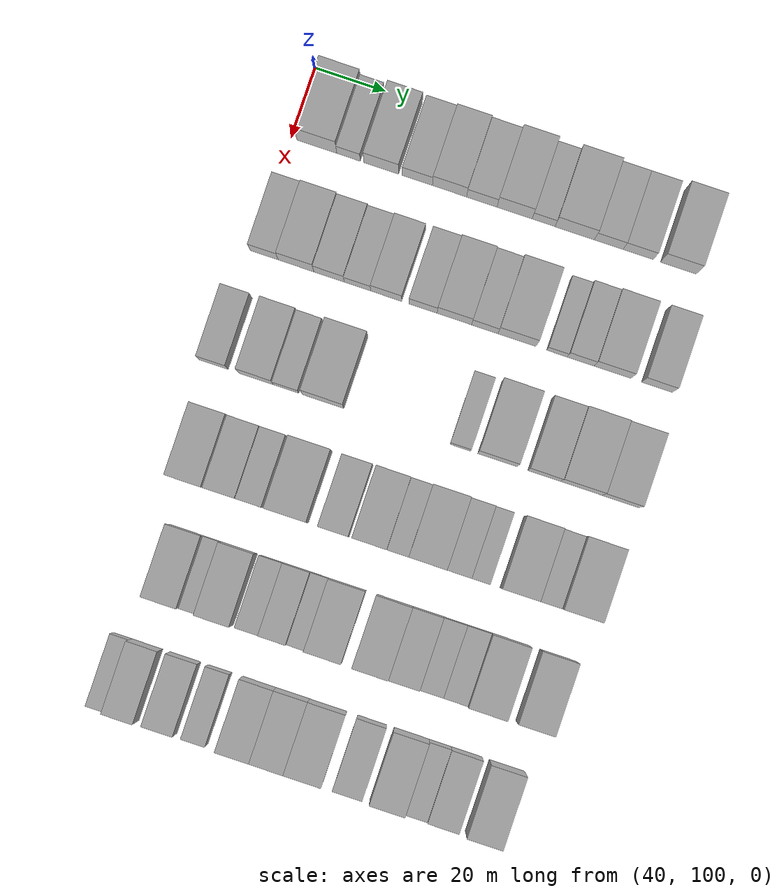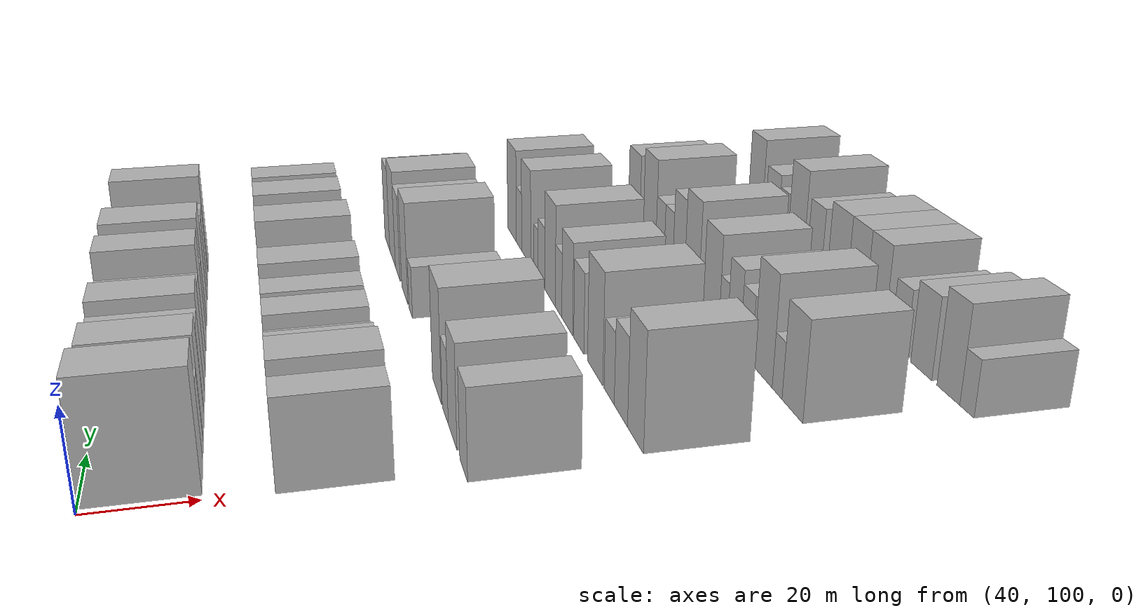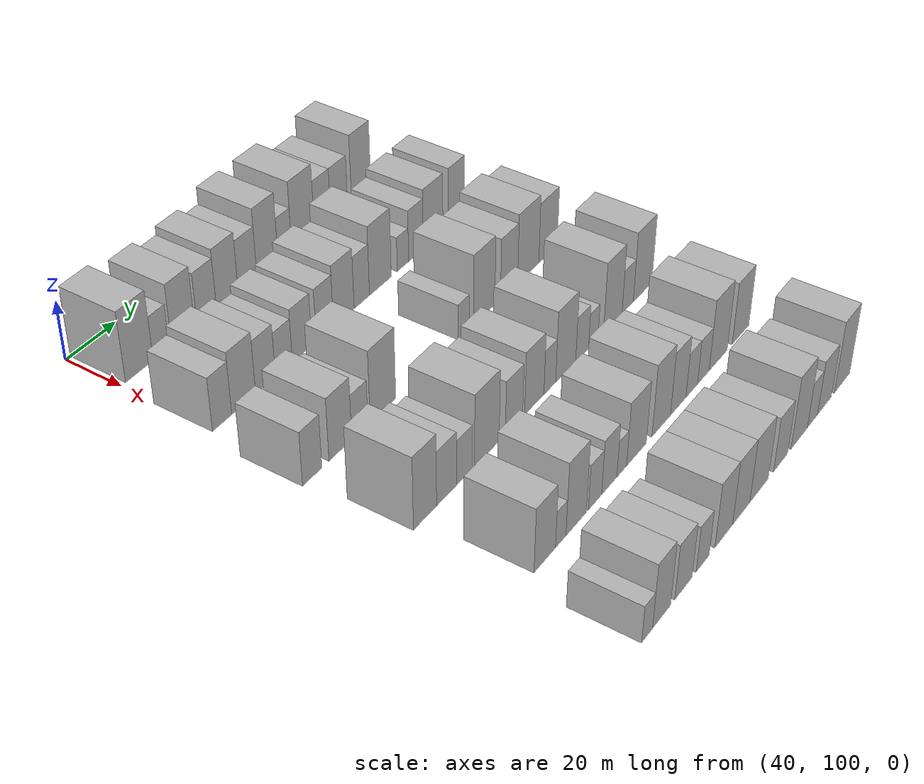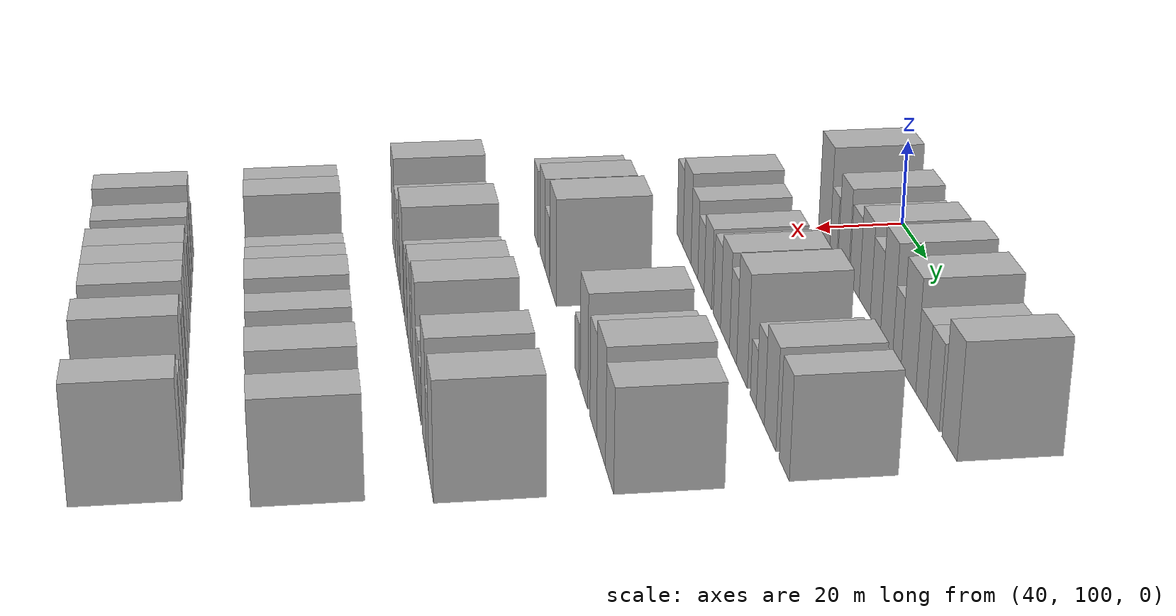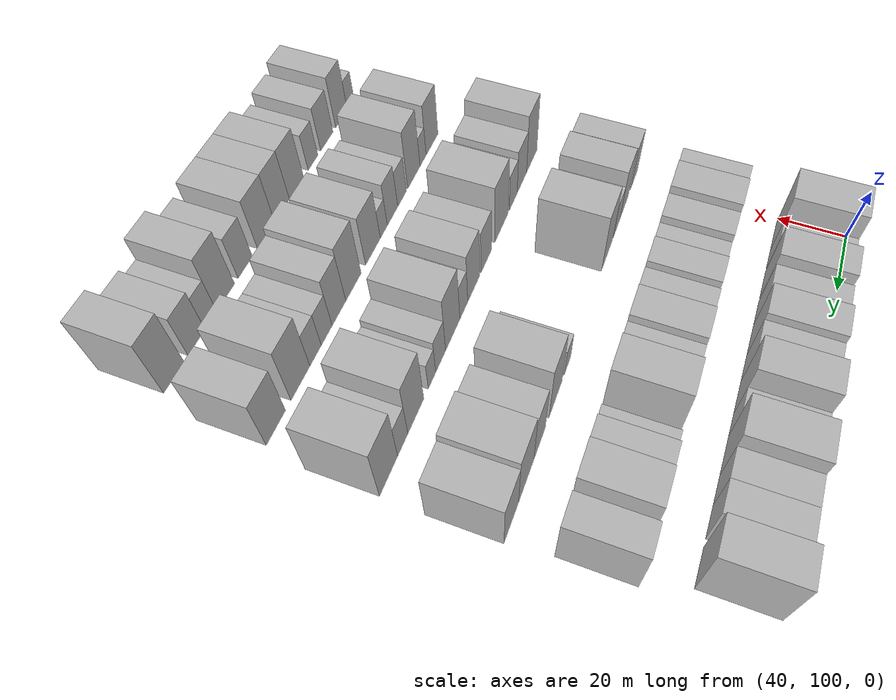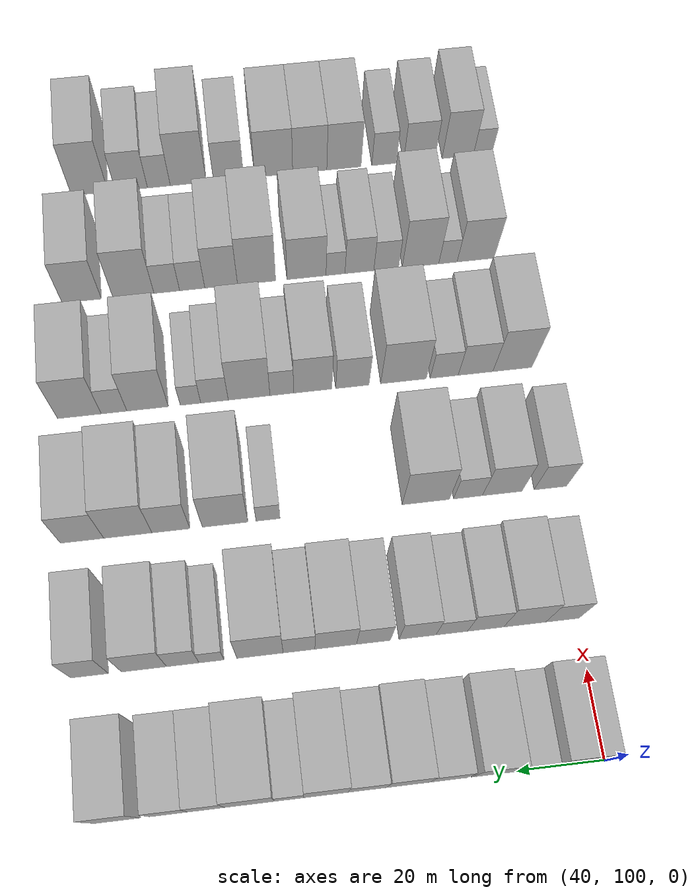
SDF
<sdf version="1.6">
 <world name="default">
  <model name="building_68">
   <static>1</static>
   <pose>50.0000 107.2907 0 0.000000 0.000000 0.000000</pose>
   <link name="link">
    <pose>0 0 12.00 0 0 0</pose>
    <collision name="collision"><geometry><box><size>20.0000 11.2395 24.0000</size></box></geometry></collision>
    <visual name="visual">
     <cast_shadows>0</cast_shadows>
     <geometry><box><size>20.0000 11.2395 24.0000</size></box></geometry>
     <material>
      <script>
       <uri>model://HANNAS_wall/materials/scripts</uri>
       <uri>model://HANNAS_wall/materials/textures</uri>
       <name>vrc/HANNAS_wall</name>
      </script>
     </material>
    </visual>
   </link>
  </model>
  <model name="building_69">
   <static>1</static>
   <pose>50.0000 116.2270 0 0.000000 0.000000 0.000000</pose>
   <link name="link">
    <pose>0 0 7.50 0 0 0</pose>
    <collision name="collision"><geometry><box><size>20.0000 6.6330 15.0000</size></box></geometry></collision>
    <visual name="visual">
     <cast_shadows>0</cast_shadows>
     <geometry><box><size>20.0000 6.6330 15.0000</size></box></geometry>
     <material>
      <script>
       <uri>model://HANNAS_wall/materials/scripts</uri>
       <uri>model://HANNAS_wall/materials/textures</uri>
       <name>vrc/HANNAS_wall</name>
      </script>
     </material>
    </visual>
   </link>
  </model>
  <model name="building_70">
   <static>1</static>
   <pose>50.0000 125.4357 0 0.000000 0.000000 0.000000</pose>
   <link name="link">
    <pose>0 0 10.50 0 0 0</pose>
    <collision name="collision"><geometry><box><size>20.0000 9.7845 21.0000</size></box></geometry></collision>
    <visual name="visual">
     <cast_shadows>0</cast_shadows>
     <geometry><box><size>20.0000 9.7845 21.0000</size></box></geometry>
     <material>
      <script>
       <uri>model://HANNAS_wall/materials/scripts</uri>
       <uri>model://HANNAS_wall/materials/textures</uri>
       <name>vrc/HANNAS_wall</name>
      </script>
     </material>
    </visual>
   </link>
  </model>
  <model name="building_71">
   <static>1</static>
   <pose>50.0000 135.5813 0 0.000000 0.000000 0.000000</pose>
   <link name="link">
    <pose>0 0 9.00 0 0 0</pose>
    <collision name="collision"><geometry><box><size>20.0000 8.5066 18.0000</size></box></geometry></collision>
    <visual name="visual">
     <cast_shadows>0</cast_shadows>
     <geometry><box><size>20.0000 8.5066 18.0000</size></box></geometry>
     <material>
      <script>
       <uri>model://HANNAS_wall/materials/scripts</uri>
       <uri>model://HANNAS_wall/materials/textures</uri>
       <name>vrc/HANNAS_wall</name>
      </script>
     </material>
    </visual>
   </link>
  </model>
  <model name="building_72">
   <static>1</static>
   <pose>50.0000 144.6615 0 0.000000 0.000000 0.000000</pose>
   <link name="link">
    <pose>0 0 10.50 0 0 0</pose>
    <collision name="collision"><geometry><box><size>20.0000 9.6538 21.0000</size></box></geometry></collision>
    <visual name="visual">
     <cast_shadows>0</cast_shadows>
     <geometry><box><size>20.0000 9.6538 21.0000</size></box></geometry>
     <material>
      <script>
       <uri>model://HANNAS_wall/materials/scripts</uri>
       <uri>model://HANNAS_wall/materials/textures</uri>
       <name>vrc/HANNAS_wall</name>
      </script>
     </material>
    </visual>
   </link>
  </model>
  <model name="building_73">
   <static>1</static>
   <pose>50.0000 153.7642 0 0.000000 0.000000 0.000000</pose>
   <link name="link">
    <pose>0 0 9.00 0 0 0</pose>
    <collision name="collision"><geometry><box><size>20.0000 8.5515 18.0000</size></box></geometry></collision>
    <visual name="visual">
     <cast_shadows>0</cast_shadows>
     <geometry><box><size>20.0000 8.5515 18.0000</size></box></geometry>
     <material>
      <script>
       <uri>model://HANNAS_wall/materials/scripts</uri>
       <uri>model://HANNAS_wall/materials/textures</uri>
       <name>vrc/HANNAS_wall</name>
      </script>
     </material>
    </visual>
   </link>
  </model>
  <model name="building_74">
   <static>1</static>
   <pose>50.0000 162.9716 0 0.000000 0.000000 0.000000</pose>
   <link name="link">
    <pose>0 0 12.00 0 0 0</pose>
    <collision name="collision"><geometry><box><size>20.0000 9.8633 24.0000</size></box></geometry></collision>
    <visual name="visual">
     <cast_shadows>0</cast_shadows>
     <geometry><box><size>20.0000 9.8633 24.0000</size></box></geometry>
     <material>
      <script>
       <uri>model://HANNAS_wall/materials/scripts</uri>
       <uri>model://HANNAS_wall/materials/textures</uri>
       <name>vrc/HANNAS_wall</name>
      </script>
     </material>
    </visual>
   </link>
  </model>
  <model name="building_75">
   <static>1</static>
   <pose>50.0000 171.1340 0 0.000000 0.000000 0.000000</pose>
   <link name="link">
    <pose>0 0 7.50 0 0 0</pose>
    <collision name="collision"><geometry><box><size>20.0000 6.4616 15.0000</size></box></geometry></collision>
    <visual name="visual">
     <cast_shadows>0</cast_shadows>
     <geometry><box><size>20.0000 6.4616 15.0000</size></box></geometry>
     <material>
      <script>
       <uri>model://HANNAS_wall/materials/scripts</uri>
       <uri>model://HANNAS_wall/materials/textures</uri>
       <name>vrc/HANNAS_wall</name>
      </script>
     </material>
    </visual>
   </link>
  </model>
  <model name="building_76">
   <static>1</static>
   <pose>50.0000 179.8879 0 0.000000 0.000000 0.000000</pose>
   <link name="link">
    <pose>0 0 12.00 0 0 0</pose>
    <collision name="collision"><geometry><box><size>20.0000 11.0463 24.0000</size></box></geometry></collision>
    <visual name="visual">
     <cast_shadows>0</cast_shadows>
     <geometry><box><size>20.0000 11.0463 24.0000</size></box></geometry>
     <material>
      <script>
       <uri>model://HANNAS_wall/materials/scripts</uri>
       <uri>model://HANNAS_wall/materials/textures</uri>
       <name>vrc/HANNAS_wall</name>
      </script>
     </material>
    </visual>
   </link>
  </model>
  <model name="building_77">
   <static>1</static>
   <pose>50.0000 189.4567 0 0.000000 0.000000 0.000000</pose>
   <link name="link">
    <pose>0 0 9.00 0 0 0</pose>
    <collision name="collision"><geometry><box><size>20.0000 8.0913 18.0000</size></box></geometry></collision>
    <visual name="visual">
     <cast_shadows>0</cast_shadows>
     <geometry><box><size>20.0000 8.0913 18.0000</size></box></geometry>
     <material>
      <script>
       <uri>model://HANNAS_wall/materials/scripts</uri>
       <uri>model://HANNAS_wall/materials/textures</uri>
       <name>vrc/HANNAS_wall</name>
      </script>
     </material>
    </visual>
   </link>
  </model>
  <model name="building_78">
   <static>1</static>
   <pose>50.0000 197.7735 0 0.000000 0.000000 0.000000</pose>
   <link name="link">
    <pose>0 0 9.00 0 0 0</pose>
    <collision name="collision"><geometry><box><size>20.0000 8.5423 18.0000</size></box></geometry></collision>
    <visual name="visual">
     <cast_shadows>0</cast_shadows>
     <geometry><box><size>20.0000 8.5423 18.0000</size></box></geometry>
     <material>
      <script>
       <uri>model://HANNAS_wall/materials/scripts</uri>
       <uri>model://HANNAS_wall/materials/textures</uri>
       <name>vrc/HANNAS_wall</name>
      </script>
     </material>
    </visual>
   </link>
  </model>
  <model name="building_79">
   <static>1</static>
   <pose>50.0000 209.0818 0 0.000000 0.000000 0.000000</pose>
   <link name="link">
    <pose>0 0 12.00 0 0 0</pose>
    <collision name="collision"><geometry><box><size>20.0000 10.0741 24.0000</size></box></geometry></collision>
    <visual name="visual">
     <cast_shadows>0</cast_shadows>
     <geometry><box><size>20.0000 10.0741 24.0000</size></box></geometry>
     <material>
      <script>
       <uri>model://HANNAS_wall/materials/scripts</uri>
       <uri>model://HANNAS_wall/materials/textures</uri>
       <name>vrc/HANNAS_wall</name>
      </script>
     </material>
    </visual>
   </link>
  </model>
  <model name="building_188">
   <static>1</static>
   <pose>82.0000 103.3178 0 0.000000 0.000000 0.000000</pose>
   <link name="link">
    <pose>0 0 9.00 0 0 0</pose>
    <collision name="collision"><geometry><box><size>20.0000 7.8950 18.0000</size></box></geometry></collision>
    <visual name="visual">
     <cast_shadows>0</cast_shadows>
     <geometry><box><size>20.0000 7.8950 18.0000</size></box></geometry>
     <material>
      <script>
       <uri>model://HANNAS_wall/materials/scripts</uri>
       <uri>model://HANNAS_wall/materials/textures</uri>
       <name>vrc/HANNAS_wall</name>
      </script>
     </material>
    </visual>
   </link>
  </model>
  <model name="building_189">
   <static>1</static>
   <pose>82.0000 112.2791 0 0.000000 0.000000 0.000000</pose>
   <link name="link">
    <pose>0 0 10.50 0 0 0</pose>
    <collision name="collision"><geometry><box><size>20.0000 10.0275 21.0000</size></box></geometry></collision>
    <visual name="visual">
     <cast_shadows>0</cast_shadows>
     <geometry><box><size>20.0000 10.0275 21.0000</size></box></geometry>
     <material>
      <script>
       <uri>model://HANNAS_wall/materials/scripts</uri>
       <uri>model://HANNAS_wall/materials/textures</uri>
       <name>vrc/HANNAS_wall</name>
      </script>
     </material>
    </visual>
   </link>
  </model>
  <model name="building_190">
   <static>1</static>
   <pose>82.0000 121.5537 0 0.000000 0.000000 0.000000</pose>
   <link name="link">
    <pose>0 0 9.00 0 0 0</pose>
    <collision name="collision"><geometry><box><size>20.0000 8.5217 18.0000</size></box></geometry></collision>
    <visual name="visual">
     <cast_shadows>0</cast_shadows>
     <geometry><box><size>20.0000 8.5217 18.0000</size></box></geometry>
     <material>
      <script>
       <uri>model://HANNAS_wall/materials/scripts</uri>
       <uri>model://HANNAS_wall/materials/textures</uri>
       <name>vrc/HANNAS_wall</name>
      </script>
     </material>
    </visual>
   </link>
  </model>
  <model name="building_191">
   <static>1</static>
   <pose>82.0000 129.5365 0 0.000000 0.000000 0.000000</pose>
   <link name="link">
    <pose>0 0 7.50 0 0 0</pose>
    <collision name="collision"><geometry><box><size>20.0000 7.4438 15.0000</size></box></geometry></collision>
    <visual name="visual">
     <cast_shadows>0</cast_shadows>
     <geometry><box><size>20.0000 7.4438 15.0000</size></box></geometry>
     <material>
      <script>
       <uri>model://HANNAS_wall/materials/scripts</uri>
       <uri>model://HANNAS_wall/materials/textures</uri>
       <name>vrc/HANNAS_wall</name>
      </script>
     </material>
    </visual>
   </link>
  </model>
  <model name="building_192">
   <static>1</static>
   <pose>82.0000 137.6174 0 0.000000 0.000000 0.000000</pose>
   <link name="link">
    <pose>0 0 9.00 0 0 0</pose>
    <collision name="collision"><geometry><box><size>20.0000 8.7180 18.0000</size></box></geometry></collision>
    <visual name="visual">
     <cast_shadows>0</cast_shadows>
     <geometry><box><size>20.0000 8.7180 18.0000</size></box></geometry>
     <material>
      <script>
       <uri>model://HANNAS_wall/materials/scripts</uri>
       <uri>model://HANNAS_wall/materials/textures</uri>
       <name>vrc/HANNAS_wall</name>
      </script>
     </material>
    </visual>
   </link>
  </model>
  <model name="building_193">
   <static>1</static>
   <pose>82.0000 147.9540 0 0.000000 0.000000 0.000000</pose>
   <link name="link">
    <pose>0 0 9.00 0 0 0</pose>
    <collision name="collision"><geometry><box><size>20.0000 7.9552 18.0000</size></box></geometry></collision>
    <visual name="visual">
     <cast_shadows>0</cast_shadows>
     <geometry><box><size>20.0000 7.9552 18.0000</size></box></geometry>
     <material>
      <script>
       <uri>model://HANNAS_wall/materials/scripts</uri>
       <uri>model://HANNAS_wall/materials/textures</uri>
       <name>vrc/HANNAS_wall</name>
      </script>
     </material>
    </visual>
   </link>
  </model>
  <model name="building_194">
   <static>1</static>
   <pose>82.0000 156.7895 0 0.000000 0.000000 0.000000</pose>
   <link name="link">
    <pose>0 0 10.50 0 0 0</pose>
    <collision name="collision"><geometry><box><size>20.0000 9.7158 21.0000</size></box></geometry></collision>
    <visual name="visual">
     <cast_shadows>0</cast_shadows>
     <geometry><box><size>20.0000 9.7158 21.0000</size></box></geometry>
     <material>
      <script>
       <uri>model://HANNAS_wall/materials/scripts</uri>
       <uri>model://HANNAS_wall/materials/textures</uri>
       <name>vrc/HANNAS_wall</name>
      </script>
     </material>
    </visual>
   </link>
  </model>
  <model name="building_195">
   <static>1</static>
   <pose>82.0000 165.3419 0 0.000000 0.000000 0.000000</pose>
   <link name="link">
    <pose>0 0 9.00 0 0 0</pose>
    <collision name="collision"><geometry><box><size>20.0000 7.3891 18.0000</size></box></geometry></collision>
    <visual name="visual">
     <cast_shadows>0</cast_shadows>
     <geometry><box><size>20.0000 7.3891 18.0000</size></box></geometry>
     <material>
      <script>
       <uri>model://HANNAS_wall/materials/scripts</uri>
       <uri>model://HANNAS_wall/materials/textures</uri>
       <name>vrc/HANNAS_wall</name>
      </script>
     </material>
    </visual>
   </link>
  </model>
  <model name="building_196">
   <static>1</static>
   <pose>82.0000 174.3986 0 0.000000 0.000000 0.000000</pose>
   <link name="link">
    <pose>0 0 12.00 0 0 0</pose>
    <collision name="collision"><geometry><box><size>20.0000 10.7243 24.0000</size></box></geometry></collision>
    <visual name="visual">
     <cast_shadows>0</cast_shadows>
     <geometry><box><size>20.0000 10.7243 24.0000</size></box></geometry>
     <material>
      <script>
       <uri>model://HANNAS_wall/materials/scripts</uri>
       <uri>model://HANNAS_wall/materials/textures</uri>
       <name>vrc/HANNAS_wall</name>
      </script>
     </material>
    </visual>
   </link>
  </model>
  <model name="building_197">
   <static>1</static>
   <pose>82.0000 185.6397 0 0.000000 0.000000 0.000000</pose>
   <link name="link">
    <pose>0 0 6.00 0 0 0</pose>
    <collision name="collision"><geometry><box><size>20.0000 5.7580 12.0000</size></box></geometry></collision>
    <visual name="visual">
     <cast_shadows>0</cast_shadows>
     <geometry><box><size>20.0000 5.7580 12.0000</size></box></geometry>
     <material>
      <script>
       <uri>model://HANNAS_wall/materials/scripts</uri>
       <uri>model://HANNAS_wall/materials/textures</uri>
       <name>vrc/HANNAS_wall</name>
      </script>
     </material>
    </visual>
   </link>
  </model>
  <model name="building_198">
   <static>1</static>
   <pose>82.0000 192.2772 0 0.000000 0.000000 0.000000</pose>
   <link name="link">
    <pose>0 0 9.00 0 0 0</pose>
    <collision name="collision"><geometry><box><size>20.0000 7.5170 18.0000</size></box></geometry></collision>
    <visual name="visual">
     <cast_shadows>0</cast_shadows>
     <geometry><box><size>20.0000 7.5170 18.0000</size></box></geometry>
     <material>
      <script>
       <uri>model://HANNAS_wall/materials/scripts</uri>
       <uri>model://HANNAS_wall/materials/textures</uri>
       <name>vrc/HANNAS_wall</name>
      </script>
     </material>
    </visual>
   </link>
  </model>
  <model name="building_199">
   <static>1</static>
   <pose>82.0000 201.2326 0 0.000000 0.000000 0.000000</pose>
   <link name="link">
    <pose>0 0 10.50 0 0 0</pose>
    <collision name="collision"><geometry><box><size>20.0000 10.3939 21.0000</size></box></geometry></collision>
    <visual name="visual">
     <cast_shadows>0</cast_shadows>
     <geometry><box><size>20.0000 10.3939 21.0000</size></box></geometry>
     <material>
      <script>
       <uri>model://HANNAS_wall/materials/scripts</uri>
       <uri>model://HANNAS_wall/materials/textures</uri>
       <name>vrc/HANNAS_wall</name>
      </script>
     </material>
    </visual>
   </link>
  </model>
  <model name="building_200">
   <static>1</static>
   <pose>82.0000 213.7466 0 0.000000 0.000000 0.000000</pose>
   <link name="link">
    <pose>0 0 10.50 0 0 0</pose>
    <collision name="collision"><geometry><box><size>20.0000 8.6340 21.0000</size></box></geometry></collision>
    <visual name="visual">
     <cast_shadows>0</cast_shadows>
     <geometry><box><size>20.0000 8.6340 21.0000</size></box></geometry>
     <material>
      <script>
       <uri>model://HANNAS_wall/materials/scripts</uri>
       <uri>model://HANNAS_wall/materials/textures</uri>
       <name>vrc/HANNAS_wall</name>
      </script>
     </material>
    </visual>
   </link>
  </model>
  <model name="building_311">
   <static>1</static>
   <pose>114.0000 99.9673 0 0.000000 0.000000 0.000000</pose>
   <link name="link">
    <pose>0 0 9.00 0 0 0</pose>
    <collision name="collision"><geometry><box><size>20.0000 8.0536 18.0000</size></box></geometry></collision>
    <visual name="visual">
     <cast_shadows>0</cast_shadows>
     <geometry><box><size>20.0000 8.0536 18.0000</size></box></geometry>
     <material>
      <script>
       <uri>model://HANNAS_wall/materials/scripts</uri>
       <uri>model://HANNAS_wall/materials/textures</uri>
       <name>vrc/HANNAS_wall</name>
      </script>
     </material>
    </visual>
   </link>
  </model>
  <model name="building_312">
   <static>1</static>
   <pose>114.0000 111.8880 0 0.000000 0.000000 0.000000</pose>
   <link name="link">
    <pose>0 0 10.50 0 0 0</pose>
    <collision name="collision"><geometry><box><size>20.0000 9.7879 21.0000</size></box></geometry></collision>
    <visual name="visual">
     <cast_shadows>0</cast_shadows>
     <geometry><box><size>20.0000 9.7879 21.0000</size></box></geometry>
     <material>
      <script>
       <uri>model://HANNAS_wall/materials/scripts</uri>
       <uri>model://HANNAS_wall/materials/textures</uri>
       <name>vrc/HANNAS_wall</name>
      </script>
     </material>
    </visual>
   </link>
  </model>
  <model name="building_313">
   <static>1</static>
   <pose>114.0000 120.3462 0 0.000000 0.000000 0.000000</pose>
   <link name="link">
    <pose>0 0 7.50 0 0 0</pose>
    <collision name="collision"><geometry><box><size>20.0000 7.1284 15.0000</size></box></geometry></collision>
    <visual name="visual">
     <cast_shadows>0</cast_shadows>
     <geometry><box><size>20.0000 7.1284 15.0000</size></box></geometry>
     <material>
      <script>
       <uri>model://HANNAS_wall/materials/scripts</uri>
       <uri>model://HANNAS_wall/materials/textures</uri>
       <name>vrc/HANNAS_wall</name>
      </script>
     </material>
    </visual>
   </link>
  </model>
  <model name="building_314">
   <static>1</static>
   <pose>114.0000 130.7249 0 0.000000 0.000000 0.000000</pose>
   <link name="link">
    <pose>0 0 12.00 0 0 0</pose>
    <collision name="collision"><geometry><box><size>20.0000 11.6292 24.0000</size></box></geometry></collision>
    <visual name="visual">
     <cast_shadows>0</cast_shadows>
     <geometry><box><size>20.0000 11.6292 24.0000</size></box></geometry>
     <material>
      <script>
       <uri>model://HANNAS_wall/materials/scripts</uri>
       <uri>model://HANNAS_wall/materials/textures</uri>
       <name>vrc/HANNAS_wall</name>
      </script>
     </material>
    </visual>
   </link>
  </model>
  <model name="building_315">
   <static>1</static>
   <pose>114.0000 169.2341 0 0.000000 0.000000 0.000000</pose>
   <link name="link">
    <pose>0 0 6.00 0 0 0</pose>
    <collision name="collision"><geometry><box><size>20.0000 5.7964 12.0000</size></box></geometry></collision>
    <visual name="visual">
     <cast_shadows>0</cast_shadows>
     <geometry><box><size>20.0000 5.7964 12.0000</size></box></geometry>
     <material>
      <script>
       <uri>model://HANNAS_wall/materials/scripts</uri>
       <uri>model://HANNAS_wall/materials/textures</uri>
       <name>vrc/HANNAS_wall</name>
      </script>
     </material>
    </visual>
   </link>
  </model>
  <model name="building_316">
   <static>1</static>
   <pose>114.0000 179.6455 0 0.000000 0.000000 0.000000</pose>
   <link name="link">
    <pose>0 0 12.00 0 0 0</pose>
    <collision name="collision"><geometry><box><size>20.0000 11.0262 24.0000</size></box></geometry></collision>
    <visual name="visual">
     <cast_shadows>0</cast_shadows>
     <geometry><box><size>20.0000 11.0262 24.0000</size></box></geometry>
     <material>
      <script>
       <uri>model://HANNAS_wall/materials/scripts</uri>
       <uri>model://HANNAS_wall/materials/textures</uri>
       <name>vrc/HANNAS_wall</name>
      </script>
     </material>
    </visual>
   </link>
  </model>
  <model name="building_317">
   <static>1</static>
   <pose>114.0000 192.7251 0 0.000000 0.000000 0.000000</pose>
   <link name="link">
    <pose>0 0 10.50 0 0 0</pose>
    <collision name="collision"><geometry><box><size>20.0000 9.1331 21.0000</size></box></geometry></collision>
    <visual name="visual">
     <cast_shadows>0</cast_shadows>
     <geometry><box><size>20.0000 9.1331 21.0000</size></box></geometry>
     <material>
      <script>
       <uri>model://HANNAS_wall/materials/scripts</uri>
       <uri>model://HANNAS_wall/materials/textures</uri>
       <name>vrc/HANNAS_wall</name>
      </script>
     </material>
    </visual>
   </link>
  </model>
  <model name="building_318">
   <static>1</static>
   <pose>114.0000 203.0955 0 0.000000 0.000000 0.000000</pose>
   <link name="link">
    <pose>0 0 12.00 0 0 0</pose>
    <collision name="collision"><geometry><box><size>20.0000 11.6078 24.0000</size></box></geometry></collision>
    <visual name="visual">
     <cast_shadows>0</cast_shadows>
     <geometry><box><size>20.0000 11.6078 24.0000</size></box></geometry>
     <material>
      <script>
       <uri>model://HANNAS_wall/materials/scripts</uri>
       <uri>model://HANNAS_wall/materials/textures</uri>
       <name>vrc/HANNAS_wall</name>
      </script>
     </material>
    </visual>
   </link>
  </model>
  <model name="building_319">
   <static>1</static>
   <pose>114.0000 214.0854 0 0.000000 0.000000 0.000000</pose>
   <link name="link">
    <pose>0 0 10.50 0 0 0</pose>
    <collision name="collision"><geometry><box><size>20.0000 10.3719 21.0000</size></box></geometry></collision>
    <visual name="visual">
     <cast_shadows>0</cast_shadows>
     <geometry><box><size>20.0000 10.3719 21.0000</size></box></geometry>
     <material>
      <script>
       <uri>model://HANNAS_wall/materials/scripts</uri>
       <uri>model://HANNAS_wall/materials/textures</uri>
       <name>vrc/HANNAS_wall</name>
      </script>
     </material>
    </visual>
   </link>
  </model>
  <model name="building_430">
   <static>1</static>
   <pose>146.0000 103.5539 0 0.000000 0.000000 0.000000</pose>
   <link name="link">
    <pose>0 0 12.00 0 0 0</pose>
    <collision name="collision"><geometry><box><size>20.0000 10.0597 24.0000</size></box></geometry></collision>
    <visual name="visual">
     <cast_shadows>0</cast_shadows>
     <geometry><box><size>20.0000 10.0597 24.0000</size></box></geometry>
     <material>
      <script>
       <uri>model://HANNAS_wall/materials/scripts</uri>
       <uri>model://HANNAS_wall/materials/textures</uri>
       <name>vrc/HANNAS_wall</name>
      </script>
     </material>
    </visual>
   </link>
  </model>
  <model name="building_431">
   <static>1</static>
   <pose>146.0000 113.0341 0 0.000000 0.000000 0.000000</pose>
   <link name="link">
    <pose>0 0 9.00 0 0 0</pose>
    <collision name="collision"><geometry><box><size>20.0000 8.9008 18.0000</size></box></geometry></collision>
    <visual name="visual">
     <cast_shadows>0</cast_shadows>
     <geometry><box><size>20.0000 8.9008 18.0000</size></box></geometry>
     <material>
      <script>
       <uri>model://HANNAS_wall/materials/scripts</uri>
       <uri>model://HANNAS_wall/materials/textures</uri>
       <name>vrc/HANNAS_wall</name>
      </script>
     </material>
    </visual>
   </link>
  </model>
  <model name="building_432">
   <static>1</static>
   <pose>146.0000 121.0769 0 0.000000 0.000000 0.000000</pose>
   <link name="link">
    <pose>0 0 7.50 0 0 0</pose>
    <collision name="collision"><geometry><box><size>20.0000 7.1848 15.0000</size></box></geometry></collision>
    <visual name="visual">
     <cast_shadows>0</cast_shadows>
     <geometry><box><size>20.0000 7.1848 15.0000</size></box></geometry>
     <material>
      <script>
       <uri>model://HANNAS_wall/materials/scripts</uri>
       <uri>model://HANNAS_wall/materials/textures</uri>
       <name>vrc/HANNAS_wall</name>
      </script>
     </material>
    </visual>
   </link>
  </model>
  <model name="building_433">
   <static>1</static>
   <pose>146.0000 131.4957 0 0.000000 0.000000 0.000000</pose>
   <link name="link">
    <pose>0 0 12.00 0 0 0</pose>
    <collision name="collision"><geometry><box><size>20.0000 11.6529 24.0000</size></box></geometry></collision>
    <visual name="visual">
     <cast_shadows>0</cast_shadows>
     <geometry><box><size>20.0000 11.6529 24.0000</size></box></geometry>
     <material>
      <script>
       <uri>model://HANNAS_wall/materials/scripts</uri>
       <uri>model://HANNAS_wall/materials/textures</uri>
       <name>vrc/HANNAS_wall</name>
      </script>
     </material>
    </visual>
   </link>
  </model>
  <model name="building_434">
   <static>1</static>
   <pose>146.0000 144.5512 0 0.000000 0.000000 0.000000</pose>
   <link name="link">
    <pose>0 0 9.00 0 0 0</pose>
    <collision name="collision"><geometry><box><size>20.0000 8.4580 18.0000</size></box></geometry></collision>
    <visual name="visual">
     <cast_shadows>0</cast_shadows>
     <geometry><box><size>20.0000 8.4580 18.0000</size></box></geometry>
     <material>
      <script>
       <uri>model://HANNAS_wall/materials/scripts</uri>
       <uri>model://HANNAS_wall/materials/textures</uri>
       <name>vrc/HANNAS_wall</name>
      </script>
     </material>
    </visual>
   </link>
  </model>
  <model name="building_435">
   <static>1</static>
   <pose>146.0000 154.6089 0 0.000000 0.000000 0.000000</pose>
   <link name="link">
    <pose>0 0 10.50 0 0 0</pose>
    <collision name="collision"><geometry><box><size>20.0000 9.6574 21.0000</size></box></geometry></collision>
    <visual name="visual">
     <cast_shadows>0</cast_shadows>
     <geometry><box><size>20.0000 9.6574 21.0000</size></box></geometry>
     <material>
      <script>
       <uri>model://HANNAS_wall/materials/scripts</uri>
       <uri>model://HANNAS_wall/materials/textures</uri>
       <name>vrc/HANNAS_wall</name>
      </script>
     </material>
    </visual>
   </link>
  </model>
  <model name="building_436">
   <static>1</static>
   <pose>146.0000 162.4564 0 0.000000 0.000000 0.000000</pose>
   <link name="link">
    <pose>0 0 7.50 0 0 0</pose>
    <collision name="collision"><geometry><box><size>20.0000 6.0378 15.0000</size></box></geometry></collision>
    <visual name="visual">
     <cast_shadows>0</cast_shadows>
     <geometry><box><size>20.0000 6.0378 15.0000</size></box></geometry>
     <material>
      <script>
       <uri>model://HANNAS_wall/materials/scripts</uri>
       <uri>model://HANNAS_wall/materials/textures</uri>
       <name>vrc/HANNAS_wall</name>
      </script>
     </material>
    </visual>
   </link>
  </model>
  <model name="building_437">
   <static>1</static>
   <pose>146.0000 170.7299 0 0.000000 0.000000 0.000000</pose>
   <link name="link">
    <pose>0 0 12.00 0 0 0</pose>
    <collision name="collision"><geometry><box><size>20.0000 10.5092 24.0000</size></box></geometry></collision>
    <visual name="visual">
     <cast_shadows>0</cast_shadows>
     <geometry><box><size>20.0000 10.5092 24.0000</size></box></geometry>
     <material>
      <script>
       <uri>model://HANNAS_wall/materials/scripts</uri>
       <uri>model://HANNAS_wall/materials/textures</uri>
       <name>vrc/HANNAS_wall</name>
      </script>
     </material>
    </visual>
   </link>
  </model>
  <model name="building_438">
   <static>1</static>
   <pose>146.0000 179.4460 0 0.000000 0.000000 0.000000</pose>
   <link name="link">
    <pose>0 0 7.50 0 0 0</pose>
    <collision name="collision"><geometry><box><size>20.0000 6.9230 15.0000</size></box></geometry></collision>
    <visual name="visual">
     <cast_shadows>0</cast_shadows>
     <geometry><box><size>20.0000 6.9230 15.0000</size></box></geometry>
     <material>
      <script>
       <uri>model://HANNAS_wall/materials/scripts</uri>
       <uri>model://HANNAS_wall/materials/textures</uri>
       <name>vrc/HANNAS_wall</name>
      </script>
     </material>
    </visual>
   </link>
  </model>
  <model name="building_439">
   <static>1</static>
   <pose>146.0000 185.4930 0 0.000000 0.000000 0.000000</pose>
   <link name="link">
    <pose>0 0 6.00 0 0 0</pose>
    <collision name="collision"><geometry><box><size>20.0000 5.1710 12.0000</size></box></geometry></collision>
    <visual name="visual">
     <cast_shadows>0</cast_shadows>
     <geometry><box><size>20.0000 5.1710 12.0000</size></box></geometry>
     <material>
      <script>
       <uri>model://HANNAS_wall/materials/scripts</uri>
       <uri>model://HANNAS_wall/materials/textures</uri>
       <name>vrc/HANNAS_wall</name>
      </script>
     </material>
    </visual>
   </link>
  </model>
  <model name="building_440">
   <static>1</static>
   <pose>146.0000 196.2735 0 0.000000 0.000000 0.000000</pose>
   <link name="link">
    <pose>0 0 12.00 0 0 0</pose>
    <collision name="collision"><geometry><box><size>20.0000 10.3901 24.0000</size></box></geometry></collision>
    <visual name="visual">
     <cast_shadows>0</cast_shadows>
     <geometry><box><size>20.0000 10.3901 24.0000</size></box></geometry>
     <material>
      <script>
       <uri>model://HANNAS_wall/materials/scripts</uri>
       <uri>model://HANNAS_wall/materials/textures</uri>
       <name>vrc/HANNAS_wall</name>
      </script>
     </material>
    </visual>
   </link>
  </model>
  <model name="building_441">
   <static>1</static>
   <pose>146.0000 204.6836 0 0.000000 0.000000 0.000000</pose>
   <link name="link">
    <pose>0 0 7.50 0 0 0</pose>
    <collision name="collision"><geometry><box><size>20.0000 6.4303 15.0000</size></box></geometry></collision>
    <visual name="visual">
     <cast_shadows>0</cast_shadows>
     <geometry><box><size>20.0000 6.4303 15.0000</size></box></geometry>
     <material>
      <script>
       <uri>model://HANNAS_wall/materials/scripts</uri>
       <uri>model://HANNAS_wall/materials/textures</uri>
       <name>vrc/HANNAS_wall</name>
      </script>
     </material>
    </visual>
   </link>
  </model>
  <model name="building_442">
   <static>1</static>
   <pose>146.0000 213.3465 0 0.000000 0.000000 0.000000</pose>
   <link name="link">
    <pose>0 0 12.00 0 0 0</pose>
    <collision name="collision"><geometry><box><size>20.0000 10.8955 24.0000</size></box></geometry></collision>
    <visual name="visual">
     <cast_shadows>0</cast_shadows>
     <geometry><box><size>20.0000 10.8955 24.0000</size></box></geometry>
     <material>
      <script>
       <uri>model://HANNAS_wall/materials/scripts</uri>
       <uri>model://HANNAS_wall/materials/textures</uri>
       <name>vrc/HANNAS_wall</name>
      </script>
     </material>
    </visual>
   </link>
  </model>
  <model name="building_551">
   <static>1</static>
   <pose>178.0000 107.5633 0 0.000000 0.000000 0.000000</pose>
   <link name="link">
    <pose>0 0 10.50 0 0 0</pose>
    <collision name="collision"><geometry><box><size>20.0000 9.8485 21.0000</size></box></geometry></collision>
    <visual name="visual">
     <cast_shadows>0</cast_shadows>
     <geometry><box><size>20.0000 9.8485 21.0000</size></box></geometry>
     <material>
      <script>
       <uri>model://HANNAS_wall/materials/scripts</uri>
       <uri>model://HANNAS_wall/materials/textures</uri>
       <name>vrc/HANNAS_wall</name>
      </script>
     </material>
    </visual>
   </link>
  </model>
  <model name="building_552">
   <static>1</static>
   <pose>178.0000 114.9462 0 0.000000 0.000000 0.000000</pose>
   <link name="link">
    <pose>0 0 6.00 0 0 0</pose>
    <collision name="collision"><geometry><box><size>20.0000 4.9174 12.0000</size></box></geometry></collision>
    <visual name="visual">
     <cast_shadows>0</cast_shadows>
     <geometry><box><size>20.0000 4.9174 12.0000</size></box></geometry>
     <material>
      <script>
       <uri>model://HANNAS_wall/materials/scripts</uri>
       <uri>model://HANNAS_wall/materials/textures</uri>
       <name>vrc/HANNAS_wall</name>
      </script>
     </material>
    </visual>
   </link>
  </model>
  <model name="building_553">
   <static>1</static>
   <pose>178.0000 122.2663 0 0.000000 0.000000 0.000000</pose>
   <link name="link">
    <pose>0 0 12.00 0 0 0</pose>
    <collision name="collision"><geometry><box><size>20.0000 9.7227 24.0000</size></box></geometry></collision>
    <visual name="visual">
     <cast_shadows>0</cast_shadows>
     <geometry><box><size>20.0000 9.7227 24.0000</size></box></geometry>
     <material>
      <script>
       <uri>model://HANNAS_wall/materials/scripts</uri>
       <uri>model://HANNAS_wall/materials/textures</uri>
       <name>vrc/HANNAS_wall</name>
      </script>
     </material>
    </visual>
   </link>
  </model>
  <model name="building_554">
   <static>1</static>
   <pose>178.0000 131.4058 0 0.000000 0.000000 0.000000</pose>
   <link name="link">
    <pose>0 0 7.50 0 0 0</pose>
    <collision name="collision"><geometry><box><size>20.0000 6.5563 15.0000</size></box></geometry></collision>
    <visual name="visual">
     <cast_shadows>0</cast_shadows>
     <geometry><box><size>20.0000 6.5563 15.0000</size></box></geometry>
     <material>
      <script>
       <uri>model://HANNAS_wall/materials/scripts</uri>
       <uri>model://HANNAS_wall/materials/textures</uri>
       <name>vrc/HANNAS_wall</name>
      </script>
     </material>
    </visual>
   </link>
  </model>
  <model name="building_555">
   <static>1</static>
   <pose>178.0000 138.5104 0 0.000000 0.000000 0.000000</pose>
   <link name="link">
    <pose>0 0 9.00 0 0 0</pose>
    <collision name="collision"><geometry><box><size>20.0000 7.6529 18.0000</size></box></geometry></collision>
    <visual name="visual">
     <cast_shadows>0</cast_shadows>
     <geometry><box><size>20.0000 7.6529 18.0000</size></box></geometry>
     <material>
      <script>
       <uri>model://HANNAS_wall/materials/scripts</uri>
       <uri>model://HANNAS_wall/materials/textures</uri>
       <name>vrc/HANNAS_wall</name>
      </script>
     </material>
    </visual>
   </link>
  </model>
  <model name="building_556">
   <static>1</static>
   <pose>178.0000 144.8488 0 0.000000 0.000000 0.000000</pose>
   <link name="link">
    <pose>0 0 6.00 0 0 0</pose>
    <collision name="collision"><geometry><box><size>20.0000 5.0238 12.0000</size></box></geometry></collision>
    <visual name="visual">
     <cast_shadows>0</cast_shadows>
     <geometry><box><size>20.0000 5.0238 12.0000</size></box></geometry>
     <material>
      <script>
       <uri>model://HANNAS_wall/materials/scripts</uri>
       <uri>model://HANNAS_wall/materials/textures</uri>
       <name>vrc/HANNAS_wall</name>
      </script>
     </material>
    </visual>
   </link>
  </model>
  <model name="building_557">
   <static>1</static>
   <pose>178.0000 152.5067 0 0.000000 0.000000 0.000000</pose>
   <link name="link">
    <pose>0 0 10.50 0 0 0</pose>
    <collision name="collision"><geometry><box><size>20.0000 10.2920 21.0000</size></box></geometry></collision>
    <visual name="visual">
     <cast_shadows>0</cast_shadows>
     <geometry><box><size>20.0000 10.2920 21.0000</size></box></geometry>
     <material>
      <script>
       <uri>model://HANNAS_wall/materials/scripts</uri>
       <uri>model://HANNAS_wall/materials/textures</uri>
       <name>vrc/HANNAS_wall</name>
      </script>
     </material>
    </visual>
   </link>
  </model>
  <model name="building_558">
   <static>1</static>
   <pose>178.0000 165.6590 0 0.000000 0.000000 0.000000</pose>
   <link name="link">
    <pose>0 0 12.00 0 0 0</pose>
    <collision name="collision"><geometry><box><size>20.0000 10.0126 24.0000</size></box></geometry></collision>
    <visual name="visual">
     <cast_shadows>0</cast_shadows>
     <geometry><box><size>20.0000 10.0126 24.0000</size></box></geometry>
     <material>
      <script>
       <uri>model://HANNAS_wall/materials/scripts</uri>
       <uri>model://HANNAS_wall/materials/textures</uri>
       <name>vrc/HANNAS_wall</name>
      </script>
     </material>
    </visual>
   </link>
  </model>
  <model name="building_559">
   <static>1</static>
   <pose>178.0000 174.9654 0 0.000000 0.000000 0.000000</pose>
   <link name="link">
    <pose>0 0 10.50 0 0 0</pose>
    <collision name="collision"><geometry><box><size>20.0000 8.6001 21.0000</size></box></geometry></collision>
    <visual name="visual">
     <cast_shadows>0</cast_shadows>
     <geometry><box><size>20.0000 8.6001 21.0000</size></box></geometry>
     <material>
      <script>
       <uri>model://HANNAS_wall/materials/scripts</uri>
       <uri>model://HANNAS_wall/materials/textures</uri>
       <name>vrc/HANNAS_wall</name>
      </script>
     </material>
    </visual>
   </link>
  </model>
  <model name="building_560">
   <static>1</static>
   <pose>178.0000 182.5574 0 0.000000 0.000000 0.000000</pose>
   <link name="link">
    <pose>0 0 7.50 0 0 0</pose>
    <collision name="collision"><geometry><box><size>20.0000 6.5839 15.0000</size></box></geometry></collision>
    <visual name="visual">
     <cast_shadows>0</cast_shadows>
     <geometry><box><size>20.0000 6.5839 15.0000</size></box></geometry>
     <material>
      <script>
       <uri>model://HANNAS_wall/materials/scripts</uri>
       <uri>model://HANNAS_wall/materials/textures</uri>
       <name>vrc/HANNAS_wall</name>
      </script>
     </material>
    </visual>
   </link>
  </model>
  <model name="building_561">
   <static>1</static>
   <pose>178.0000 189.2113 0 0.000000 0.000000 0.000000</pose>
   <link name="link">
    <pose>0 0 7.50 0 0 0</pose>
    <collision name="collision"><geometry><box><size>20.0000 6.7240 15.0000</size></box></geometry></collision>
    <visual name="visual">
     <cast_shadows>0</cast_shadows>
     <geometry><box><size>20.0000 6.7240 15.0000</size></box></geometry>
     <material>
      <script>
       <uri>model://HANNAS_wall/materials/scripts</uri>
       <uri>model://HANNAS_wall/materials/textures</uri>
       <name>vrc/HANNAS_wall</name>
      </script>
     </material>
    </visual>
   </link>
  </model>
  <model name="building_562">
   <static>1</static>
   <pose>178.0000 197.9257 0 0.000000 0.000000 0.000000</pose>
   <link name="link">
    <pose>0 0 12.00 0 0 0</pose>
    <collision name="collision"><geometry><box><size>20.0000 10.7049 24.0000</size></box></geometry></collision>
    <visual name="visual">
     <cast_shadows>0</cast_shadows>
     <geometry><box><size>20.0000 10.7049 24.0000</size></box></geometry>
     <material>
      <script>
       <uri>model://HANNAS_wall/materials/scripts</uri>
       <uri>model://HANNAS_wall/materials/textures</uri>
       <name>vrc/HANNAS_wall</name>
      </script>
     </material>
    </visual>
   </link>
  </model>
  <model name="building_563">
   <static>1</static>
   <pose>178.0000 211.3824 0 0.000000 0.000000 0.000000</pose>
   <link name="link">
    <pose>0 0 10.50 0 0 0</pose>
    <collision name="collision"><geometry><box><size>20.0000 10.2083 21.0000</size></box></geometry></collision>
    <visual name="visual">
     <cast_shadows>0</cast_shadows>
     <geometry><box><size>20.0000 10.2083 21.0000</size></box></geometry>
     <material>
      <script>
       <uri>model://HANNAS_wall/materials/scripts</uri>
       <uri>model://HANNAS_wall/materials/textures</uri>
       <name>vrc/HANNAS_wall</name>
      </script>
     </material>
    </visual>
   </link>
  </model>
  <model name="building_667">
   <static>1</static>
   <pose>210.0000 100.1552 0 0.000000 0.000000 0.000000</pose>
   <link name="link">
    <pose>0 0 6.00 0 0 0</pose>
    <collision name="collision"><geometry><box><size>20.0000 5.1836 12.0000</size></box></geometry></collision>
    <visual name="visual">
     <cast_shadows>0</cast_shadows>
     <geometry><box><size>20.0000 5.1836 12.0000</size></box></geometry>
     <material>
      <script>
       <uri>model://HANNAS_wall/materials/scripts</uri>
       <uri>model://HANNAS_wall/materials/textures</uri>
       <name>vrc/HANNAS_wall</name>
      </script>
     </material>
    </visual>
   </link>
  </model>
  <model name="building_668">
   <static>1</static>
   <pose>210.0000 107.0865 0 0.000000 0.000000 0.000000</pose>
   <link name="link">
    <pose>0 0 10.50 0 0 0</pose>
    <collision name="collision"><geometry><box><size>20.0000 8.6789 21.0000</size></box></geometry></collision>
    <visual name="visual">
     <cast_shadows>0</cast_shadows>
     <geometry><box><size>20.0000 8.6789 21.0000</size></box></geometry>
     <material>
      <script>
       <uri>model://HANNAS_wall/materials/scripts</uri>
       <uri>model://HANNAS_wall/materials/textures</uri>
       <name>vrc/HANNAS_wall</name>
      </script>
     </material>
    </visual>
   </link>
  </model>
  <model name="building_669">
   <static>1</static>
   <pose>210.0000 117.7758 0 0.000000 0.000000 0.000000</pose>
   <link name="link">
    <pose>0 0 9.00 0 0 0</pose>
    <collision name="collision"><geometry><box><size>20.0000 8.6998 18.0000</size></box></geometry></collision>
    <visual name="visual">
     <cast_shadows>0</cast_shadows>
     <geometry><box><size>20.0000 8.6998 18.0000</size></box></geometry>
     <material>
      <script>
       <uri>model://HANNAS_wall/materials/scripts</uri>
       <uri>model://HANNAS_wall/materials/textures</uri>
       <name>vrc/HANNAS_wall</name>
      </script>
     </material>
    </visual>
   </link>
  </model>
  <model name="building_670">
   <static>1</static>
   <pose>210.0000 127.4787 0 0.000000 0.000000 0.000000</pose>
   <link name="link">
    <pose>0 0 7.50 0 0 0</pose>
    <collision name="collision"><geometry><box><size>20.0000 6.7059 15.0000</size></box></geometry></collision>
    <visual name="visual">
     <cast_shadows>0</cast_shadows>
     <geometry><box><size>20.0000 6.7059 15.0000</size></box></geometry>
     <material>
      <script>
       <uri>model://HANNAS_wall/materials/scripts</uri>
       <uri>model://HANNAS_wall/materials/textures</uri>
       <name>vrc/HANNAS_wall</name>
      </script>
     </material>
    </visual>
   </link>
  </model>
  <model name="building_671">
   <static>1</static>
   <pose>210.0000 138.5340 0 0.000000 0.000000 0.000000</pose>
   <link name="link">
    <pose>0 0 10.50 0 0 0</pose>
    <collision name="collision"><geometry><box><size>20.0000 9.4047 21.0000</size></box></geometry></collision>
    <visual name="visual">
     <cast_shadows>0</cast_shadows>
     <geometry><box><size>20.0000 9.4047 21.0000</size></box></geometry>
     <material>
      <script>
       <uri>model://HANNAS_wall/materials/scripts</uri>
       <uri>model://HANNAS_wall/materials/textures</uri>
       <name>vrc/HANNAS_wall</name>
      </script>
     </material>
    </visual>
   </link>
  </model>
  <model name="building_672">
   <static>1</static>
   <pose>210.0000 147.9192 0 0.000000 0.000000 0.000000</pose>
   <link name="link">
    <pose>0 0 10.50 0 0 0</pose>
    <collision name="collision"><geometry><box><size>20.0000 9.3657 21.0000</size></box></geometry></collision>
    <visual name="visual">
     <cast_shadows>0</cast_shadows>
     <geometry><box><size>20.0000 9.3657 21.0000</size></box></geometry>
     <material>
      <script>
       <uri>model://HANNAS_wall/materials/scripts</uri>
       <uri>model://HANNAS_wall/materials/textures</uri>
       <name>vrc/HANNAS_wall</name>
      </script>
     </material>
    </visual>
   </link>
  </model>
  <model name="building_673">
   <static>1</static>
   <pose>210.0000 157.8066 0 0.000000 0.000000 0.000000</pose>
   <link name="link">
    <pose>0 0 10.50 0 0 0</pose>
    <collision name="collision"><geometry><box><size>20.0000 10.4091 21.0000</size></box></geometry></collision>
    <visual name="visual">
     <cast_shadows>0</cast_shadows>
     <geometry><box><size>20.0000 10.4091 21.0000</size></box></geometry>
     <material>
      <script>
       <uri>model://HANNAS_wall/materials/scripts</uri>
       <uri>model://HANNAS_wall/materials/textures</uri>
       <name>vrc/HANNAS_wall</name>
      </script>
     </material>
    </visual>
   </link>
  </model>
  <model name="building_674">
   <static>1</static>
   <pose>210.0000 170.1147 0 0.000000 0.000000 0.000000</pose>
   <link name="link">
    <pose>0 0 9.00 0 0 0</pose>
    <collision name="collision"><geometry><box><size>20.0000 8.2073 18.0000</size></box></geometry></collision>
    <visual name="visual">
     <cast_shadows>0</cast_shadows>
     <geometry><box><size>20.0000 8.2073 18.0000</size></box></geometry>
     <material>
      <script>
       <uri>model://HANNAS_wall/materials/scripts</uri>
       <uri>model://HANNAS_wall/materials/textures</uri>
       <name>vrc/HANNAS_wall</name>
      </script>
     </material>
    </visual>
   </link>
  </model>
  <model name="building_675">
   <static>1</static>
   <pose>210.0000 181.1123 0 0.000000 0.000000 0.000000</pose>
   <link name="link">
    <pose>0 0 12.00 0 0 0</pose>
    <collision name="collision"><geometry><box><size>20.0000 9.7878 24.0000</size></box></geometry></collision>
    <visual name="visual">
     <cast_shadows>0</cast_shadows>
     <geometry><box><size>20.0000 9.7878 24.0000</size></box></geometry>
     <material>
      <script>
       <uri>model://HANNAS_wall/materials/scripts</uri>
       <uri>model://HANNAS_wall/materials/textures</uri>
       <name>vrc/HANNAS_wall</name>
      </script>
     </material>
    </visual>
   </link>
  </model>
  <model name="building_676">
   <static>1</static>
   <pose>210.0000 189.1012 0 0.000000 0.000000 0.000000</pose>
   <link name="link">
    <pose>0 0 7.50 0 0 0</pose>
    <collision name="collision"><geometry><box><size>20.0000 6.1902 15.0000</size></box></geometry></collision>
    <visual name="visual">
     <cast_shadows>0</cast_shadows>
     <geometry><box><size>20.0000 6.1902 15.0000</size></box></geometry>
     <material>
      <script>
       <uri>model://HANNAS_wall/materials/scripts</uri>
       <uri>model://HANNAS_wall/materials/textures</uri>
       <name>vrc/HANNAS_wall</name>
      </script>
     </material>
    </visual>
   </link>
  </model>
  <model name="building_677">
   <static>1</static>
   <pose>210.0000 196.5338 0 0.000000 0.000000 0.000000</pose>
   <link name="link">
    <pose>0 0 9.00 0 0 0</pose>
    <collision name="collision"><geometry><box><size>20.0000 8.6749 18.0000</size></box></geometry></collision>
    <visual name="visual">
     <cast_shadows>0</cast_shadows>
     <geometry><box><size>20.0000 8.6749 18.0000</size></box></geometry>
     <material>
      <script>
       <uri>model://HANNAS_wall/materials/scripts</uri>
       <uri>model://HANNAS_wall/materials/textures</uri>
       <name>vrc/HANNAS_wall</name>
      </script>
     </material>
    </visual>
   </link>
  </model>
  <model name="building_678">
   <static>1</static>
   <pose>210.0000 207.8056 0 0.000000 0.000000 0.000000</pose>
   <link name="link">
    <pose>0 0 12.00 0 0 0</pose>
    <collision name="collision"><geometry><box><size>20.0000 9.8686 24.0000</size></box></geometry></collision>
    <visual name="visual">
     <cast_shadows>0</cast_shadows>
     <geometry><box><size>20.0000 9.8686 24.0000</size></box></geometry>
     <material>
      <script>
       <uri>model://HANNAS_wall/materials/scripts</uri>
       <uri>model://HANNAS_wall/materials/textures</uri>
       <name>vrc/HANNAS_wall</name>
      </script>
     </material>
    </visual>
   </link>
  </model>
 </world>
</sdf>
